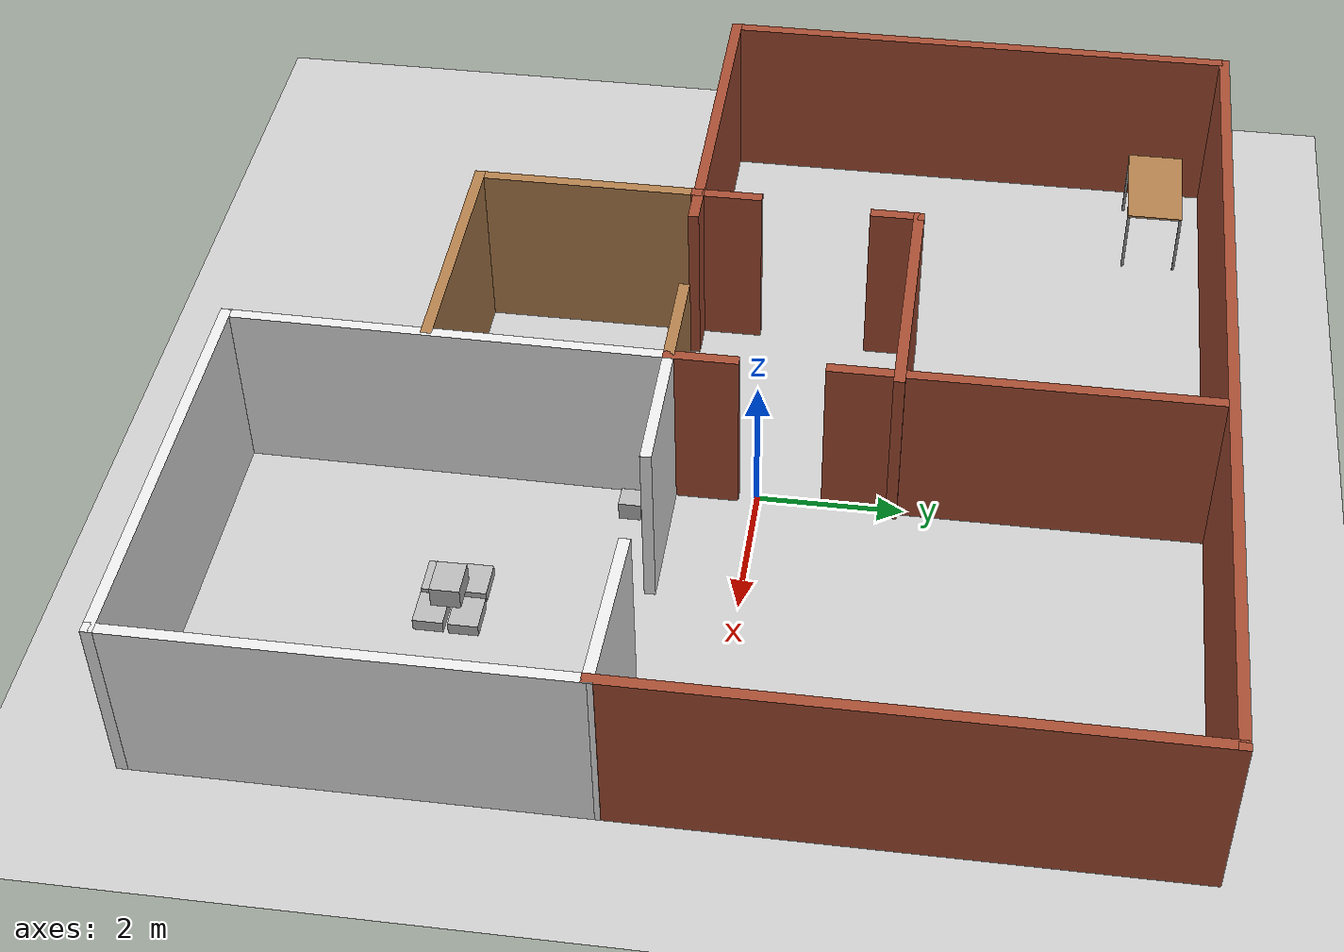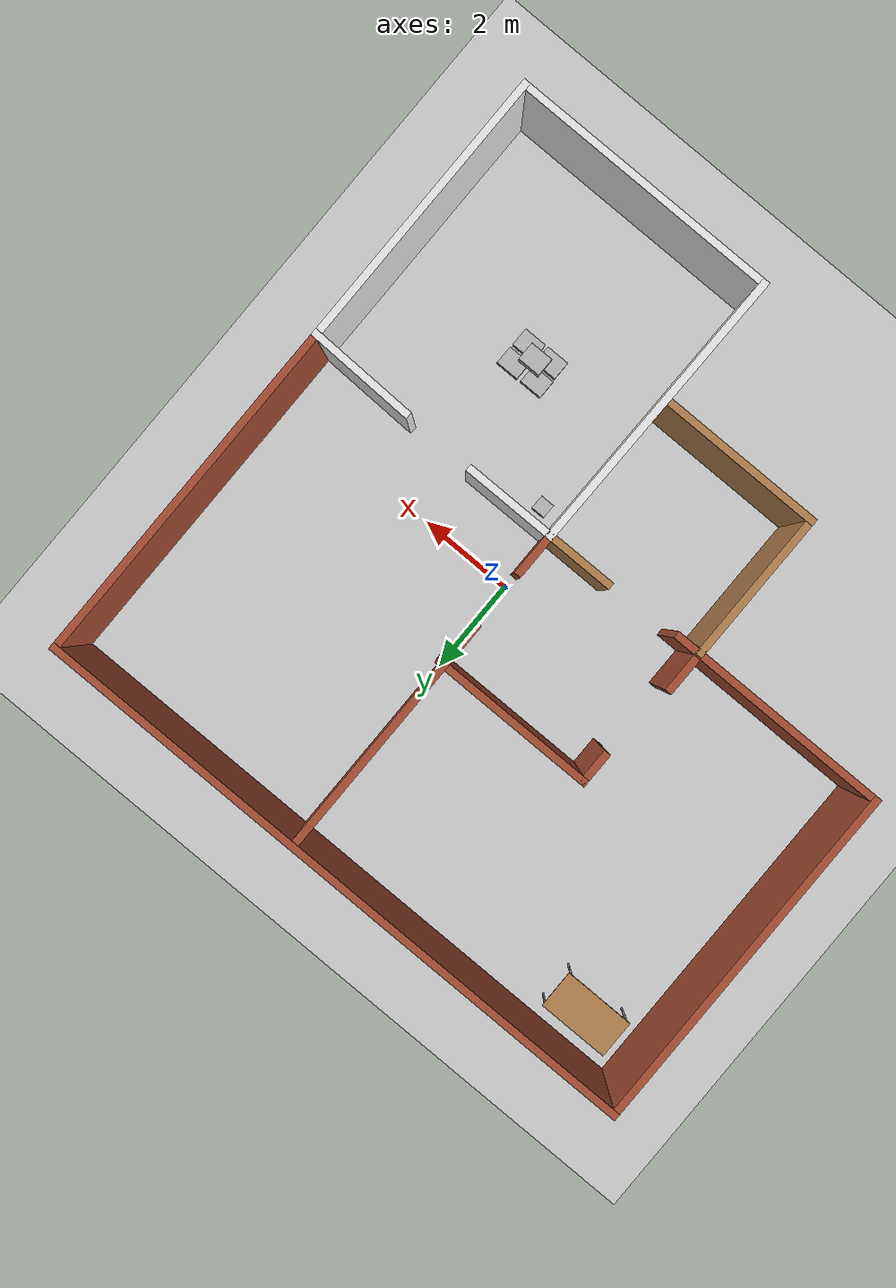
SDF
<sdf version="1.10">
 <world name="empty">
  <physics name="8ms" type="ode">
   <max_step_size>0.008</max_step_size>
   <real_time_factor>1</real_time_factor>
   <real_time_update_rate>125</real_time_update_rate>
  </physics>
  <plugin name="gz::sim::systems::Physics" filename="gz-sim-physics-system"/>
  <plugin name="gz::sim::systems::UserCommands" filename="gz-sim-user-commands-system"/>
  <plugin name="gz::sim::systems::SceneBroadcaster" filename="gz-sim-scene-broadcaster-system"/>
  <plugin name="gz::sim::systems::Contact" filename="gz-sim-contact-system"/>
  <plugin name="gz::sim::systems::Sensors" filename="gz-sim-sensors-system"/>
  <plugin name="gz::sim::systems::Imu" filename="gz-sim-imu-system"/>
  <plugin name="gz::sim::systems::NavSat" filename="gz-sim-navsat-system"/>
  <render_engine>ogre2</render_engine>
  <spherical_coordinates>
   <surface_model>EARTH_WGS84</surface_model>
   <world_frame_orientation>ENU</world_frame_orientation>
   <latitude_deg>47.478950</latitude_deg>
   <longitude_deg>19.057785</longitude_deg>
   <elevation>0</elevation>
   <heading_deg>0</heading_deg>
  </spherical_coordinates>
  <gravity>0 0 -9.8000000000000007</gravity>
  <magnetic_field>5.5644999999999998e-06 2.2875799999999999e-05 -4.2388400000000002e-05</magnetic_field>
  <atmosphere type="adiabatic"/>
  <scene>
   <ambient>0.400000006 0.400000006 0.400000006 1</ambient>
   <background>0.699999988 0.699999988 0.699999988 1</background>
   <shadows>true</shadows>
  </scene>
  <model name="ground_plane">
   <static>true</static>
   <link name="link">
    <collision name="collision">
     <geometry><plane><normal>0 0 1</normal><size>100 100</size></plane></geometry>
     <surface><friction><ode><mu>50</mu></ode></friction></surface>
    </collision>
    <visual name="visual">
     <cast_shadows>false</cast_shadows>
     <geometry><plane><normal>0 0 1</normal><size>100 100</size></plane></geometry>
     <material>
      <script><uri>file://media/materials/scripts/gazebo.material</uri><name>Gazebo/Grey</name></script>
     </material>
    </visual>
    <inertial>
     <mass>1</mass>
     <inertia><ixx>1</ixx><ixy>0</ixy><ixz>0</ixz><iyy>1</iyy><iyz>0</iyz><izz>1</izz></inertia>
    </inertial>
   </link>
  </model>
  <model name="house">
   <pose>-0.99047399999999997 -0.51140300000000005 0 0 0 0</pose>
   <link name="Wall_1">
    <collision name="Wall_1_Collision">
     <geometry><box><size>13.25 0.14999999999999999 2.5</size></box></geometry>
     <pose>0 0 1.25 0 0 0</pose>
    </collision>
    <visual name="Wall_1_Visual">
     <pose>0 0 1.25 0 0 0</pose>
     <geometry><box><size>13.25 0.14999999999999999 2.5</size></box></geometry>
     <material>
      <script><uri>file://media/materials/scripts/gazebo.material</uri><name>Gazebo/Bricks</name></script>
      <ambient>1 1 1 1</ambient>
     </material>
     <meta><layer>0</layer></meta>
    </visual>
    <pose>-0.001062 6.6002999999999998 0 0 0 0</pose>
    <inertial>
     <mass>1</mass>
     <inertia><ixx>1</ixx><ixy>0</ixy><ixz>0</ixz><iyy>1</iyy><iyz>0</iyz><izz>1</izz></inertia>
    </inertial>
   </link>
   <link name="Wall_10">
    <collision name="Wall_10_Collision">
     <geometry><box><size>6.0883399999999996 0.14999999999999999 2.5</size></box></geometry>
     <pose>0 0 1.25 0 0 0</pose>
    </collision>
    <visual name="Wall_10_Visual">
     <pose>0 0 1.25 0 0 0</pose>
     <geometry><box><size>6.0883399999999996 0.14999999999999999 2.5</size></box></geometry>
     <material>
      <script><uri>file://media/materials/scripts/gazebo.material</uri><name>Gazebo/White</name></script>
      <ambient>1 1 1 1</ambient>
     </material>
     <meta><layer>0</layer></meta>
    </visual>
    <pose>0.97286099999999998 -3.63063 0 0 0 -1.5788500000000001</pose>
    <inertial>
     <mass>1</mass>
     <inertia><ixx>1</ixx><ixy>0</ixy><ixz>0</ixz><iyy>1</iyy><iyz>0</iyz><izz>1</izz></inertia>
    </inertial>
   </link>
   <link name="Wall_12">
    <collision name="Wall_12_Collision">
     <geometry><box><size>2 0.14999999999999999 2.5</size></box></geometry>
     <pose>0 0 1.25 0 0 0</pose>
    </collision>
    <visual name="Wall_12_Visual">
     <pose>0 0 1.25 0 0 0</pose>
     <geometry><box><size>2 0.14999999999999999 2.5</size></box></geometry>
     <material>
      <script><uri>file://media/materials/scripts/gazebo.material</uri><name>Gazebo/White</name></script>
      <ambient>1 1 1 1</ambient>
     </material>
     <meta><layer>0</layer></meta>
    </visual>
    <pose>1.92178 -0.66155399999999998 0 0 0 0</pose>
    <inertial>
     <mass>1</mass>
     <inertia><ixx>1</ixx><ixy>0</ixy><ixz>0</ixz><iyy>1</iyy><iyz>0</iyz><izz>1</izz></inertia>
    </inertial>
   </link>
   <link name="Wall_14">
    <collision name="Wall_14_Collision">
     <geometry><box><size>2.2915999999999999 0.14999999999999999 2.5</size></box></geometry>
     <pose>0 0 1.25 0 0 0</pose>
    </collision>
    <visual name="Wall_14_Visual">
     <pose>0 0 1.25 0 0 0</pose>
     <geometry><box><size>2.2915999999999999 0.14999999999999999 2.5</size></box></geometry>
     <material>
      <script><uri>file://media/materials/scripts/gazebo.material</uri><name>Gazebo/White</name></script>
      <ambient>1 1 1 1</ambient>
     </material>
     <meta><layer>0</layer></meta>
    </visual>
    <pose>5.47858 -0.71892699999999998 0 0 0 -0.028742000000000007</pose>
    <inertial>
     <mass>1</mass>
     <inertia><ixx>1</ixx><ixy>0</ixy><ixz>0</ixz><iyy>1</iyy><iyz>0</iyz><izz>1</izz></inertia>
    </inertial>
   </link>
   <link name="Wall_17">
    <collision name="Wall_17_Collision">
     <geometry><box><size>3.5 0.14999999999999999 2.5</size></box></geometry>
     <pose>0 0 1.25 0 0 0</pose>
    </collision>
    <visual name="Wall_17_Visual">
     <pose>0 0 1.25 0 0 0</pose>
     <geometry><box><size>3.5 0.14999999999999999 2.5</size></box></geometry>
     <material>
      <script><uri>file://media/materials/scripts/gazebo.material</uri><name>Gazebo/Wood</name></script>
      <ambient>1 1 1 1</ambient>
     </material>
     <meta><layer>0</layer></meta>
    </visual>
    <pose>-0.75140600000000002 -3.8801800000000002 0 0 0 3.1415899999999999</pose>
    <inertial>
     <mass>1</mass>
     <inertia><ixx>1</ixx><ixy>0</ixy><ixz>0</ixz><iyy>1</iyy><iyz>0</iyz><izz>1</izz></inertia>
    </inertial>
   </link>
   <link name="Wall_18">
    <collision name="Wall_18_Collision">
     <geometry><box><size>3.25 0.14999999999999999 2.5</size></box></geometry>
     <pose>0 0 1.25 0 0 0</pose>
    </collision>
    <visual name="Wall_18_Visual">
     <pose>0 0 1.25 0 0 0</pose>
     <geometry><box><size>3.25 0.14999999999999999 2.5</size></box></geometry>
     <material>
      <script><uri>file://media/materials/scripts/gazebo.material</uri><name>Gazebo/Wood</name></script>
      <ambient>1 1 1 1</ambient>
     </material>
     <meta><layer>0</layer></meta>
    </visual>
    <pose>-2.4264100000000002 -2.3301799999999999 0 0 0 1.5708</pose>
    <inertial>
     <mass>1</mass>
     <inertia><ixx>1</ixx><ixy>0</ixy><ixz>0</ixz><iyy>1</iyy><iyz>0</iyz><izz>1</izz></inertia>
    </inertial>
   </link>
   <link name="Wall_2">
    <collision name="Wall_2_Collision">
     <geometry><box><size>7.5 0.14999999999999999 2.5</size></box></geometry>
     <pose>0 0 1.25 0 0 0</pose>
    </collision>
    <visual name="Wall_2_Visual">
     <pose>0 0 1.25 0 0 0</pose>
     <geometry><box><size>7.5 0.14999999999999999 2.5</size></box></geometry>
     <material>
      <script><uri>file://media/materials/scripts/gazebo.material</uri><name>Gazebo/Bricks</name></script>
      <ambient>1 1 1 1</ambient>
     </material>
     <meta><layer>0</layer></meta>
    </visual>
    <pose>6.54894 2.9253 0 0 0 -1.5708</pose>
    <inertial>
     <mass>1</mass>
     <inertia><ixx>1</ixx><ixy>0</ixy><ixz>0</ixz><iyy>1</iyy><iyz>0</iyz><izz>1</izz></inertia>
    </inertial>
   </link>
   <link name="Wall_20">
    <collision name="Wall_20_Collision">
     <geometry><box><size>1 0.14999999999999999 2.5</size></box></geometry>
     <pose>0 0 1.25 0 0 0</pose>
    </collision>
    <visual name="Wall_20_Visual">
     <pose>0 0 1.25 0 0 0</pose>
     <geometry><box><size>1 0.14999999999999999 2.5</size></box></geometry>
     <material>
      <script><uri>file://media/materials/scripts/gazebo.material</uri><name>Gazebo/Bricks</name></script>
      <ambient>1 1 1 1</ambient>
     </material>
     <meta><layer>0</layer></meta>
    </visual>
    <pose>0.996784 -0.23655399999999999 0 0 0 1.5708</pose>
    <inertial>
     <mass>1</mass>
     <inertia><ixx>1</ixx><ixy>0</ixy><ixz>0</ixz><iyy>1</iyy><iyz>0</iyz><izz>1</izz></inertia>
    </inertial>
   </link>
   <link name="Wall_22">
    <collision name="Wall_22_Collision">
     <geometry><box><size>5.25 0.14999999999999999 2.5</size></box></geometry>
     <pose>0 0 1.25 0 0 0</pose>
    </collision>
    <visual name="Wall_22_Visual">
     <pose>0 0 1.25 0 0 0</pose>
     <geometry><box><size>5.25 0.14999999999999999 2.5</size></box></geometry>
     <material>
      <script><uri>file://media/materials/scripts/gazebo.material</uri><name>Gazebo/Bricks</name></script>
      <ambient>1 1 1 1</ambient>
     </material>
     <meta><layer>0</layer></meta>
    </visual>
    <pose>0.97679400000000005 4.0164600000000004 0 0 0 1.5708</pose>
    <inertial>
     <mass>1</mass>
     <inertia><ixx>1</ixx><ixy>0</ixy><ixz>0</ixz><iyy>1</iyy><iyz>0</iyz><izz>1</izz></inertia>
    </inertial>
   </link>
   <link name="Wall_24">
    <collision name="Wall_24_Collision">
     <geometry><box><size>3.5 0.14999999999999999 2.5</size></box></geometry>
     <pose>0 0 1.25 0 0 0</pose>
    </collision>
    <visual name="Wall_24_Visual">
     <pose>0 0 1.25 0 0 0</pose>
     <geometry><box><size>3.5 0.14999999999999999 2.5</size></box></geometry>
     <material>
      <script><uri>file://media/materials/scripts/gazebo.material</uri><name>Gazebo/Bricks</name></script>
      <ambient>1 1 1 1</ambient>
     </material>
     <meta><layer>0</layer></meta>
    </visual>
    <pose>-0.61391200000000001 2.3486400000000001 0 0 0 3.1415899999999999</pose>
    <inertial>
     <mass>1</mass>
     <inertia><ixx>1</ixx><ixy>0</ixy><ixz>0</ixz><iyy>1</iyy><iyz>0</iyz><izz>1</izz></inertia>
    </inertial>
   </link>
   <link name="Wall_25">
    <collision name="Wall_25_Collision">
     <geometry><box><size>0.75 0.14999999999999999 2.5</size></box></geometry>
     <pose>0 0 1.25 0 0 0</pose>
    </collision>
    <visual name="Wall_25_Visual">
     <pose>0 0 1.25 0 0 0</pose>
     <geometry><box><size>0.75 0.14999999999999999 2.5</size></box></geometry>
     <material>
      <script><uri>file://media/materials/scripts/gazebo.material</uri><name>Gazebo/Bricks</name></script>
      <ambient>1 1 1 1</ambient>
     </material>
     <meta><layer>0</layer></meta>
    </visual>
    <pose>-2.28891 2.0486399999999998 0 0 0 -1.5708</pose>
    <inertial>
     <mass>1</mass>
     <inertia><ixx>1</ixx><ixy>0</ixy><ixz>0</ixz><iyy>1</iyy><iyz>0</iyz><izz>1</izz></inertia>
    </inertial>
   </link>
   <link name="Wall_27">
    <collision name="Wall_27_Collision">
     <geometry><box><size>1 0.14999999999999999 2.5</size></box></geometry>
     <pose>0 0 1.25 0 0 0</pose>
    </collision>
    <visual name="Wall_27_Visual">
     <pose>0 0 1.25 0 0 0</pose>
     <geometry><box><size>1 0.14999999999999999 2.5</size></box></geometry>
     <material>
      <script><uri>file://media/materials/scripts/gazebo.material</uri><name>Gazebo/Bricks</name></script>
      <ambient>1 1 1 1</ambient>
     </material>
     <meta><layer>0</layer></meta>
    </visual>
    <pose>-2.4264100000000002 -0.35517799999999999 0 0 0 1.5708</pose>
    <inertial>
     <mass>1</mass>
     <inertia><ixx>1</ixx><ixy>0</ixy><ixz>0</ixz><iyy>1</iyy><iyz>0</iyz><izz>1</izz></inertia>
    </inertial>
   </link>
   <link name="Wall_3">
    <collision name="Wall_3_Collision">
     <geometry><box><size>6 0.14999999999999999 2.5</size></box></geometry>
     <pose>0 0 1.25 0 0 0</pose>
    </collision>
    <visual name="Wall_3_Visual">
     <pose>0 0 1.25 0 0 0</pose>
     <geometry><box><size>6 0.14999999999999999 2.5</size></box></geometry>
     <material>
      <script><uri>file://media/materials/scripts/gazebo.material</uri><name>Gazebo/White</name></script>
      <ambient>1 1 1 1</ambient>
     </material>
     <meta><layer>0</layer></meta>
    </visual>
    <pose>6.54894 -3.6747000000000001 0 0 0 -1.5708</pose>
    <inertial>
     <mass>1</mass>
     <inertia><ixx>1</ixx><ixy>0</ixy><ixz>0</ixz><iyy>1</iyy><iyz>0</iyz><izz>1</izz></inertia>
    </inertial>
   </link>
   <link name="Wall_4">
    <collision name="Wall_4_Collision">
     <geometry><box><size>5.75 0.14999999999999999 2.5</size></box></geometry>
     <pose>0 0 1.25 0 0 0</pose>
    </collision>
    <visual name="Wall_4_Visual">
     <pose>0 0 1.25 0 0 0</pose>
     <geometry><box><size>5.75 0.14999999999999999 2.5</size></box></geometry>
     <material>
      <script><uri>file://media/materials/scripts/gazebo.material</uri><name>Gazebo/White</name></script>
      <ambient>1 1 1 1</ambient>
     </material>
     <meta><layer>0</layer></meta>
    </visual>
    <pose>3.7489400000000002 -6.5997000000000003 0 0 0 3.1415899999999999</pose>
    <inertial>
     <mass>1</mass>
     <inertia><ixx>1</ixx><ixy>0</ixy><ixz>0</ixz><iyy>1</iyy><iyz>0</iyz><izz>1</izz></inertia>
    </inertial>
   </link>
   <link name="Wall_6">
    <collision name="Wall_6_Collision">
     <geometry><box><size>7.5 0.14999999999999999 2.5</size></box></geometry>
     <pose>0 0 1.25 0 0 0</pose>
    </collision>
    <visual name="Wall_6_Visual">
     <pose>0 0 1.25 0 0 0</pose>
     <geometry><box><size>7.5 0.14999999999999999 2.5</size></box></geometry>
     <material>
      <script><uri>file://media/materials/scripts/gazebo.material</uri><name>Gazebo/Bricks</name></script>
      <ambient>1 1 1 1</ambient>
     </material>
     <meta><layer>0</layer></meta>
    </visual>
    <pose>-6.5510599999999997 2.9253 0 0 0 -1.5708</pose>
    <inertial>
     <mass>1</mass>
     <inertia><ixx>1</ixx><ixy>0</ixy><ixz>0</ixz><iyy>1</iyy><iyz>0</iyz><izz>1</izz></inertia>
    </inertial>
   </link>
   <link name="Wall_7">
    <collision name="Wall_7_Collision">
     <geometry><box><size>4.75 0.14999999999999999 2.5</size></box></geometry>
     <pose>0 0 1.25 0 0 0</pose>
    </collision>
    <visual name="Wall_7_Visual">
     <pose>0 0 1.25 0 0 0</pose>
     <geometry><box><size>4.75 0.14999999999999999 2.5</size></box></geometry>
     <material>
      <script><uri>file://media/materials/scripts/gazebo.material</uri><name>Gazebo/Bricks</name></script>
      <ambient>1 1 1 1</ambient>
     </material>
     <meta><layer>0</layer></meta>
    </visual>
    <pose>-4.2510599999999998 -0.749699 0 0 0 0</pose>
    <inertial>
     <mass>1</mass>
     <inertia><ixx>1</ixx><ixy>0</ixy><ixz>0</ixz><iyy>1</iyy><iyz>0</iyz><izz>1</izz></inertia>
    </inertial>
   </link>
   <link name="Wall_9">
    <collision name="Wall_9_Collision">
     <geometry><box><size>1.5 0.14999999999999999 2.5</size></box></geometry>
     <pose>0 0 1.25 0 0 0</pose>
    </collision>
    <visual name="Wall_9_Visual">
     <pose>0 0 1.25 0 0 0</pose>
     <geometry><box><size>1.5 0.14999999999999999 2.5</size></box></geometry>
     <material>
      <script><uri>file://media/materials/scripts/gazebo.material</uri><name>Gazebo/Wood</name></script>
      <ambient>1 1 1 1</ambient>
     </material>
     <meta><layer>0</layer></meta>
    </visual>
    <pose>0.32178400000000001 -0.66155399999999998 0 0 0 0</pose>
    <inertial>
     <mass>1</mass>
     <inertia><ixx>1</ixx><ixy>0</ixy><ixz>0</ixz><iyy>1</iyy><iyz>0</iyz><izz>1</izz></inertia>
    </inertial>
   </link>
   <static>true</static>
  </model>
  <model name="fire_hydrant">
   <static>true</static>
   <link name="link">
    <collision name="collision"><geometry><box><size>0.3 0.3 0.5</size></box></geometry></collision>
    <visual name="visual"><geometry><box><size>0.3 0.3 0.5</size></box></geometry></visual>
    <inertial>
     <mass>1</mass>
     <inertia><ixx>1</ixx><ixy>0</ixy><ixz>0</ixz><iyy>1</iyy><iyz>0</iyz><izz>1</izz></inertia>
    </inertial>
   </link>
   <pose>0.44719199999999998 -1.6563399999999999 0 0 0 0</pose>
  </model>
  <model name="table">
   <static>true</static>
   <link name="link">
    <collision name="surface">
     <pose>0 0 1 0 0 0</pose>
     <geometry><box><size>1.5 0.80000000000000004 0.029999999999999999</size></box></geometry>
     <surface><friction><ode><mu>0.59999999999999998</mu><mu2>0.59999999999999998</mu2></ode></friction></surface>
    </collision>
    <visual name="visual1">
     <pose>0 0 1 0 0 0</pose>
     <geometry><box><size>1.5 0.80000000000000004 0.029999999999999999</size></box></geometry>
     <material>
      <script><uri>file://media/materials/scripts/gazebo.material</uri><name>Gazebo/Wood</name></script>
     </material>
    </visual>
    <collision name="front_left_leg">
     <pose>0.68000000000000005 0.38 0.5 0 0 0</pose>
     <geometry><cylinder><radius>0.02</radius><length>1</length></cylinder></geometry>
    </collision>
    <visual name="front_left_leg">
     <pose>0.68000000000000005 0.38 0.5 0 0 0</pose>
     <geometry><cylinder><radius>0.02</radius><length>1</length></cylinder></geometry>
     <material>
      <script><uri>file://media/materials/scripts/gazebo.material</uri><name>Gazebo/Grey</name></script>
     </material>
    </visual>
    <collision name="front_right_leg">
     <pose>0.68000000000000005 -0.38 0.5 0 0 0</pose>
     <geometry><cylinder><radius>0.02</radius><length>1</length></cylinder></geometry>
    </collision>
    <visual name="front_right_leg">
     <pose>0.68000000000000005 -0.38 0.5 0 0 0</pose>
     <geometry><cylinder><radius>0.02</radius><length>1</length></cylinder></geometry>
     <material>
      <script><uri>file://media/materials/scripts/gazebo.material</uri><name>Gazebo/Grey</name></script>
     </material>
    </visual>
    <collision name="back_right_leg">
     <pose>-0.68000000000000005 -0.38 0.5 0 0 0</pose>
     <geometry><cylinder><radius>0.02</radius><length>1</length></cylinder></geometry>
    </collision>
    <visual name="back_right_leg">
     <pose>-0.68000000000000005 -0.38 0.5 0 0 0</pose>
     <geometry><cylinder><radius>0.02</radius><length>1</length></cylinder></geometry>
     <material>
      <script><uri>file://media/materials/scripts/gazebo.material</uri><name>Gazebo/Grey</name></script>
     </material>
    </visual>
    <collision name="back_left_leg">
     <pose>-0.68000000000000005 0.38 0.5 0 0 0</pose>
     <geometry><cylinder><radius>0.02</radius><length>1</length></cylinder></geometry>
    </collision>
    <visual name="back_left_leg">
     <pose>-0.68000000000000005 0.38 0.5 0 0 0</pose>
     <geometry><cylinder><radius>0.02</radius><length>1</length></cylinder></geometry>
     <material>
      <script><uri>file://media/materials/scripts/gazebo.material</uri><name>Gazebo/Grey</name></script>
     </material>
    </visual>
    <inertial>
     <mass>1</mass>
     <inertia><ixx>1</ixx><ixy>0</ixy><ixz>0</ixz><iyy>1</iyy><iyz>0</iyz><izz>1</izz></inertia>
    </inertial>
   </link>
   <pose>-6.3307700000000002 5.24594 0 0 0 0</pose>
  </model>
  <model name="cardboard_box">
   <pose>2.1133000000000002 -3.9186700000000001 0.14899899999999999 -9.9999999999999995e-07
          9.9999999999999995e-07 -1.9469794287553565e-29</pose>
   <link name="link">
    <inertial>
     <mass>2</mass>
     <inertia>
      <ixx>0.041666700000000001</ixx>
      <ixy>0</ixy>
      <ixz>0</ixz>
      <iyy>0.0566667</iyy>
      <iyz>0</iyz>
      <izz>0.0683333</izz>
     </inertia>
    </inertial>
    <collision name="collision">
     <geometry><box><size>0.5 0.40000000000000002 0.29999999999999999</size></box></geometry>
     <surface>
      <friction><ode><mu>1</mu><mu2>1</mu2></ode></friction>
      <contact>
       <ode><kp>10000000</kp><kd>1</kd><min_depth>0.001</min_depth><max_vel>0.10000000000000001</max_vel></ode>
      </contact>
     </surface>
    </collision>
    <visual name="visual">
     <pose>0 0 -0.14999999999999999 0 0 0</pose>
     <geometry><box><size>0.5 0.40000000000000002 0.29999999999999999</size></box></geometry>
    </visual>
   </link>
   <static>false</static>
  </model>
  <model name="cardboard_box_0">
   <pose>2.0968599999999999 -3.4596499999999999 0.14899899999999999 9.9999999999999995e-07 0 0</pose>
   <link name="link">
    <inertial>
     <mass>2</mass>
     <inertia>
      <ixx>0.041666700000000001</ixx>
      <ixy>0</ixy>
      <ixz>0</ixz>
      <iyy>0.0566667</iyy>
      <iyz>0</iyz>
      <izz>0.0683333</izz>
     </inertia>
    </inertial>
    <collision name="collision">
     <geometry><box><size>0.5 0.40000000000000002 0.29999999999999999</size></box></geometry>
     <surface>
      <friction><ode><mu>1</mu><mu2>1</mu2></ode></friction>
      <contact>
       <ode><kp>10000000</kp><kd>1</kd><min_depth>0.001</min_depth><max_vel>0.10000000000000001</max_vel></ode>
      </contact>
     </surface>
    </collision>
    <visual name="visual">
     <pose>0 0 -0.14999999999999999 0 0 0</pose>
     <geometry><box><size>0.5 0.40000000000000002 0.29999999999999999</size></box></geometry>
    </visual>
   </link>
   <static>false</static>
  </model>
  <model name="cardboard_box_1">
   <pose>2.6721900000000001 -3.9123399999999999 0.14899899999999999 0 -9.9999999999999995e-07 0</pose>
   <link name="link">
    <inertial>
     <mass>2</mass>
     <inertia>
      <ixx>0.041666700000000001</ixx>
      <ixy>0</ixy>
      <ixz>0</ixz>
      <iyy>0.0566667</iyy>
      <iyz>0</iyz>
      <izz>0.0683333</izz>
     </inertia>
    </inertial>
    <collision name="collision">
     <geometry><box><size>0.5 0.40000000000000002 0.29999999999999999</size></box></geometry>
     <surface>
      <friction><ode><mu>1</mu><mu2>1</mu2></ode></friction>
      <contact>
       <ode><kp>10000000</kp><kd>1</kd><min_depth>0.001</min_depth><max_vel>0.10000000000000001</max_vel></ode>
      </contact>
     </surface>
    </collision>
    <visual name="visual">
     <pose>0 0 -0.14999999999999999 0 0 0</pose>
     <geometry><box><size>0.5 0.40000000000000002 0.29999999999999999</size></box></geometry>
    </visual>
   </link>
   <static>false</static>
  </model>
  <model name="cardboard_box_2">
   <pose>2.6780300000000001 -3.4481099999999998 0.14899899999999999 9.9999999999999995e-07
          -9.9999999999999995e-07 -1.9469794287553565e-29</pose>
   <link name="link">
    <inertial>
     <mass>2</mass>
     <inertia>
      <ixx>0.041666700000000001</ixx>
      <ixy>0</ixy>
      <ixz>0</ixz>
      <iyy>0.0566667</iyy>
      <iyz>0</iyz>
      <izz>0.0683333</izz>
     </inertia>
    </inertial>
    <collision name="collision">
     <geometry><box><size>0.5 0.40000000000000002 0.29999999999999999</size></box></geometry>
     <surface>
      <friction><ode><mu>1</mu><mu2>1</mu2></ode></friction>
      <contact>
       <ode><kp>10000000</kp><kd>1</kd><min_depth>0.001</min_depth><max_vel>0.10000000000000001</max_vel></ode>
      </contact>
     </surface>
    </collision>
    <visual name="visual">
     <pose>0 0 -0.14999999999999999 0 0 0</pose>
     <geometry><box><size>0.5 0.40000000000000002 0.29999999999999999</size></box></geometry>
    </visual>
   </link>
   <static>false</static>
  </model>
  <model name="cardboard_box_3">
   <pose>2.3810500000000001 -3.73373 0.44822200000000001 0.00037399999999999998
          -0.00010200000000000001 6.47705292040201e-25</pose>
   <link name="link">
    <inertial>
     <mass>2</mass>
     <inertia>
      <ixx>0.041666700000000001</ixx>
      <ixy>0</ixy>
      <ixz>0</ixz>
      <iyy>0.0566667</iyy>
      <iyz>0</iyz>
      <izz>0.0683333</izz>
     </inertia>
    </inertial>
    <collision name="collision">
     <geometry><box><size>0.5 0.40000000000000002 0.29999999999999999</size></box></geometry>
     <surface>
      <friction><ode><mu>1</mu><mu2>1</mu2></ode></friction>
      <contact>
       <ode><kp>10000000</kp><kd>1</kd><min_depth>0.001</min_depth><max_vel>0.10000000000000001</max_vel></ode>
      </contact>
     </surface>
    </collision>
    <visual name="visual">
     <pose>0 0 -0.14999999999999999 0 0 0</pose>
     <geometry><box><size>0.5 0.40000000000000002 0.29999999999999999</size></box></geometry>
    </visual>
   </link>
   <static>false</static>
  </model>
  <light name="sun" type="directional">
   <pose>0 0 10 0 0 0</pose>
   <intensity>1</intensity>
   <direction>-0.5 0.10000000000000001 -0.90000000000000002</direction>
   <diffuse>0.800000012 0.800000012 0.800000012 1</diffuse>
   <specular>0.200000003 0.200000003 0.200000003 1</specular>
   <attenuation>
    <range>1000</range>
    <linear>0.0099999997764825821</linear>
    <constant>0.89999997615814209</constant>
    <quadratic>0.0010000000474974513</quadratic>
   </attenuation>
   <spot><inner_angle>0</inner_angle><outer_angle>0</outer_angle><falloff>0</falloff></spot>
  </light>
 </world>
</sdf>
